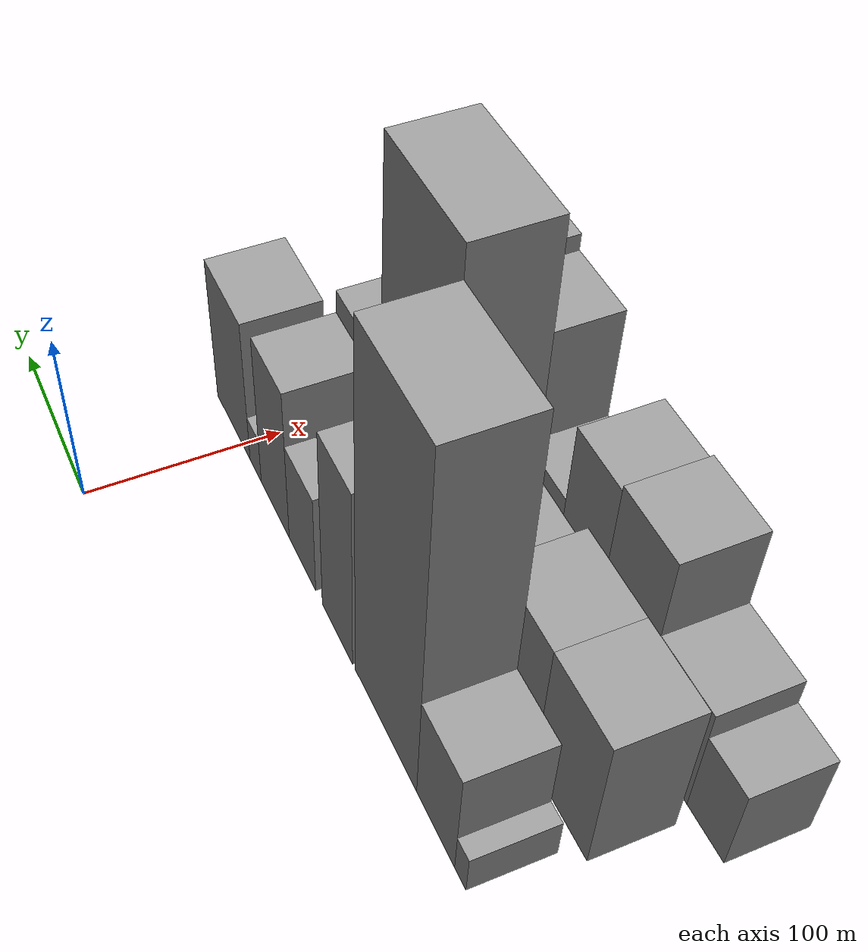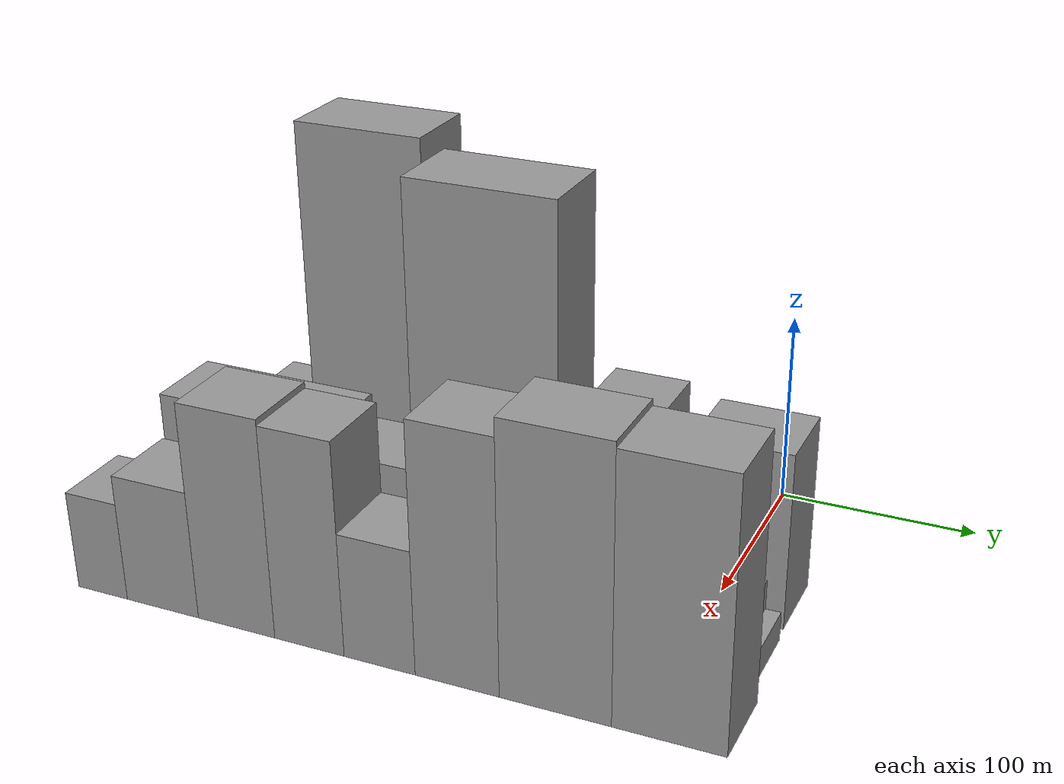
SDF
<sdf version="1.6">
 <world name="default">
  <model name="building_8">
   <static>1</static>
   <pose>100.0000 -247.0979 0 0.000000 0.000000 0.000000</pose>
   <link name="link">
    <pose>0 0 12.00 0 0 0</pose>
    <collision name="collision"><geometry><box><size>40.0000 10.2732 24.0000</size></box></geometry></collision>
    <visual name="visual">
     <cast_shadows>0</cast_shadows>
     <geometry><box><size>40.0000 10.2732 24.0000</size></box></geometry>
     <material>
      <script>
       <uri>model://grey_wall/materials/scripts</uri>
       <uri>model://grey_wall/materials/textures</uri>
       <name>vrc/grey_wall</name>
      </script>
     </material>
    </visual>
   </link>
  </model>
  <model name="building_9">
   <static>1</static>
   <pose>100.0000 -224.0156 0 0.000000 0.000000 0.000000</pose>
   <link name="link">
    <pose>0 0 33.00 0 0 0</pose>
    <collision name="collision"><geometry><box><size>40.0000 35.8916 66.0000</size></box></geometry></collision>
    <visual name="visual">
     <cast_shadows>0</cast_shadows>
     <geometry><box><size>40.0000 35.8916 66.0000</size></box></geometry>
     <material>
      <script>
       <uri>model://grey_wall/materials/scripts</uri>
       <uri>model://grey_wall/materials/textures</uri>
       <name>vrc/grey_wall</name>
      </script>
     </material>
    </visual>
   </link>
  </model>
  <model name="building_10">
   <static>1</static>
   <pose>100.0000 -174.0560 0 0.000000 0.000000 0.000000</pose>
   <link name="link">
    <pose>0 0 105.00 0 0 0</pose>
    <collision name="collision"><geometry><box><size>40.0000 64.0275 210.0000</size></box></geometry></collision>
    <visual name="visual">
     <cast_shadows>0</cast_shadows>
     <geometry><box><size>40.0000 64.0275 210.0000</size></box></geometry>
     <material>
      <script>
       <uri>model://grey_wall/materials/scripts</uri>
       <uri>model://grey_wall/materials/textures</uri>
       <name>vrc/grey_wall</name>
      </script>
     </material>
    </visual>
   </link>
  </model>
  <model name="building_11">
   <static>1</static>
   <pose>100.0000 -121.6259 0 0.000000 0.000000 0.000000</pose>
   <link name="link">
    <pose>0 0 57.00 0 0 0</pose>
    <collision name="collision"><geometry><box><size>40.0000 34.8327 114.0000</size></box></geometry></collision>
    <visual name="visual">
     <cast_shadows>0</cast_shadows>
     <geometry><box><size>40.0000 34.8327 114.0000</size></box></geometry>
     <material>
      <script>
       <uri>model://grey_wall/materials/scripts</uri>
       <uri>model://grey_wall/materials/textures</uri>
       <name>vrc/grey_wall</name>
      </script>
     </material>
    </visual>
   </link>
  </model>
  <model name="building_12">
   <static>1</static>
   <pose>100.0000 -79.8092 0 0.000000 0.000000 0.000000</pose>
   <link name="link">
    <pose>0 0 31.50 0 0 0</pose>
    <collision name="collision"><geometry><box><size>40.0000 32.8008 63.0000</size></box></geometry></collision>
    <visual name="visual">
     <cast_shadows>0</cast_shadows>
     <geometry><box><size>40.0000 32.8008 63.0000</size></box></geometry>
     <material>
      <script>
       <uri>model://grey_wall/materials/scripts</uri>
       <uri>model://grey_wall/materials/textures</uri>
       <name>vrc/grey_wall</name>
      </script>
     </material>
    </visual>
   </link>
  </model>
  <model name="building_13">
   <static>1</static>
   <pose>100.0000 -44.9601 0 0.000000 0.000000 0.000000</pose>
   <link name="link">
    <pose>0 0 48.00 0 0 0</pose>
    <collision name="collision"><geometry><box><size>40.0000 36.8974 96.0000</size></box></geometry></collision>
    <visual name="visual">
     <cast_shadows>0</cast_shadows>
     <geometry><box><size>40.0000 36.8974 96.0000</size></box></geometry>
     <material>
      <script>
       <uri>model://grey_wall/materials/scripts</uri>
       <uri>model://grey_wall/materials/textures</uri>
       <name>vrc/grey_wall</name>
      </script>
     </material>
    </visual>
   </link>
  </model>
  <model name="building_14">
   <static>1</static>
   <pose>100.0000 -18.8374 0 0.000000 0.000000 0.000000</pose>
   <link name="link">
    <pose>0 0 15.00 0 0 0</pose>
    <collision name="collision"><geometry><box><size>40.0000 15.3480 30.0000</size></box></geometry></collision>
    <visual name="visual">
     <cast_shadows>0</cast_shadows>
     <geometry><box><size>40.0000 15.3480 30.0000</size></box></geometry>
     <material>
      <script>
       <uri>model://grey_wall/materials/scripts</uri>
       <uri>model://grey_wall/materials/textures</uri>
       <name>vrc/grey_wall</name>
      </script>
     </material>
    </visual>
   </link>
  </model>
  <model name="building_15">
   <static>1</static>
   <pose>100.0000 12.3434 0 0.000000 0.000000 0.000000</pose>
   <link name="link">
    <pose>0 0 45.00 0 0 0</pose>
    <collision name="collision"><geometry><box><size>40.0000 47.0137 90.0000</size></box></geometry></collision>
    <visual name="visual">
     <cast_shadows>0</cast_shadows>
     <geometry><box><size>40.0000 47.0137 90.0000</size></box></geometry>
     <material>
      <script>
       <uri>model://grey_wall/materials/scripts</uri>
       <uri>model://grey_wall/materials/textures</uri>
       <name>vrc/grey_wall</name>
      </script>
     </material>
    </visual>
   </link>
  </model>
  <model name="building_42">
   <static>1</static>
   <pose>149.0000 -237.4442 0 0.000000 0.000000 0.000000</pose>
   <link name="link">
    <pose>0 0 42.00 0 0 0</pose>
    <collision name="collision"><geometry><box><size>40.0000 44.8894 84.0000</size></box></geometry></collision>
    <visual name="visual">
     <cast_shadows>0</cast_shadows>
     <geometry><box><size>40.0000 44.8894 84.0000</size></box></geometry>
     <material>
      <script>
       <uri>model://grey_wall/materials/scripts</uri>
       <uri>model://grey_wall/materials/textures</uri>
       <name>vrc/grey_wall</name>
      </script>
     </material>
    </visual>
   </link>
  </model>
  <model name="building_43">
   <static>1</static>
   <pose>149.0000 -191.5692 0 0.000000 0.000000 0.000000</pose>
   <link name="link">
    <pose>0 0 42.00 0 0 0</pose>
    <collision name="collision"><geometry><box><size>40.0000 46.8606 84.0000</size></box></geometry></collision>
    <visual name="visual">
     <cast_shadows>0</cast_shadows>
     <geometry><box><size>40.0000 46.8606 84.0000</size></box></geometry>
     <material>
      <script>
       <uri>model://grey_wall/materials/scripts</uri>
       <uri>model://grey_wall/materials/textures</uri>
       <name>vrc/grey_wall</name>
      </script>
     </material>
    </visual>
   </link>
  </model>
  <model name="building_44">
   <static>1</static>
   <pose>149.0000 -146.8009 0 0.000000 0.000000 0.000000</pose>
   <link name="link">
    <pose>0 0 36.00 0 0 0</pose>
    <collision name="collision"><geometry><box><size>40.0000 42.6759 72.0000</size></box></geometry></collision>
    <visual name="visual">
     <cast_shadows>0</cast_shadows>
     <geometry><box><size>40.0000 42.6759 72.0000</size></box></geometry>
     <material>
      <script>
       <uri>model://grey_wall/materials/scripts</uri>
       <uri>model://grey_wall/materials/textures</uri>
       <name>vrc/grey_wall</name>
      </script>
     </material>
    </visual>
   </link>
  </model>
  <model name="building_45">
   <static>1</static>
   <pose>149.0000 -90.2303 0 0.000000 0.000000 0.000000</pose>
   <link name="link">
    <pose>0 0 105.00 0 0 0</pose>
    <collision name="collision"><geometry><box><size>40.0000 70.4652 210.0000</size></box></geometry></collision>
    <visual name="visual">
     <cast_shadows>0</cast_shadows>
     <geometry><box><size>40.0000 70.4652 210.0000</size></box></geometry>
     <material>
      <script>
       <uri>model://grey_wall/materials/scripts</uri>
       <uri>model://grey_wall/materials/textures</uri>
       <name>vrc/grey_wall</name>
      </script>
     </material>
    </visual>
   </link>
  </model>
  <model name="building_46">
   <static>1</static>
   <pose>149.0000 -28.0417 0 0.000000 0.000000 0.000000</pose>
   <link name="link">
    <pose>0 0 43.50 0 0 0</pose>
    <collision name="collision"><geometry><box><size>40.0000 47.9121 87.0000</size></box></geometry></collision>
    <visual name="visual">
     <cast_shadows>0</cast_shadows>
     <geometry><box><size>40.0000 47.9121 87.0000</size></box></geometry>
     <material>
      <script>
       <uri>model://grey_wall/materials/scripts</uri>
       <uri>model://grey_wall/materials/textures</uri>
       <name>vrc/grey_wall</name>
      </script>
     </material>
    </visual>
   </link>
  </model>
  <model name="building_47">
   <static>1</static>
   <pose>149.0000 -0.2553 0 0.000000 0.000000 0.000000</pose>
   <link name="link">
    <pose>0 0 9.00 0 0 0</pose>
    <collision name="collision"><geometry><box><size>40.0000 7.6607 18.0000</size></box></geometry></collision>
    <visual name="visual">
     <cast_shadows>0</cast_shadows>
     <geometry><box><size>40.0000 7.6607 18.0000</size></box></geometry>
     <material>
      <script>
       <uri>model://grey_wall/materials/scripts</uri>
       <uri>model://grey_wall/materials/textures</uri>
       <name>vrc/grey_wall</name>
      </script>
     </material>
    </visual>
   </link>
  </model>
  <model name="building_48">
   <static>1</static>
   <pose>149.0000 21.4753 0 0.000000 0.000000 0.000000</pose>
   <link name="link">
    <pose>0 0 15.00 0 0 0</pose>
    <collision name="collision"><geometry><box><size>40.0000 15.8003 30.0000</size></box></geometry></collision>
    <visual name="visual">
     <cast_shadows>0</cast_shadows>
     <geometry><box><size>40.0000 15.8003 30.0000</size></box></geometry>
     <material>
      <script>
       <uri>model://grey_wall/materials/scripts</uri>
       <uri>model://grey_wall/materials/textures</uri>
       <name>vrc/grey_wall</name>
      </script>
     </material>
    </visual>
   </link>
  </model>
  <model name="building_49">
   <static>1</static>
   <pose>149.0000 33.0678 0 0.000000 0.000000 0.000000</pose>
   <link name="link">
    <pose>0 0 7.50 0 0 0</pose>
    <collision name="collision"><geometry><box><size>40.0000 7.3847 15.0000</size></box></geometry></collision>
    <visual name="visual">
     <cast_shadows>0</cast_shadows>
     <geometry><box><size>40.0000 7.3847 15.0000</size></box></geometry>
     <material>
      <script>
       <uri>model://grey_wall/materials/scripts</uri>
       <uri>model://grey_wall/materials/textures</uri>
       <name>vrc/grey_wall</name>
      </script>
     </material>
    </visual>
   </link>
  </model>
  <model name="building_70">
   <static>1</static>
   <pose>198.0000 -267.7287 0 0.000000 0.000000 0.000000</pose>
   <link name="link">
    <pose>0 0 25.50 0 0 0</pose>
    <collision name="collision"><geometry><box><size>40.0000 27.7717 51.0000</size></box></geometry></collision>
    <visual name="visual">
     <cast_shadows>0</cast_shadows>
     <geometry><box><size>40.0000 27.7717 51.0000</size></box></geometry>
     <material>
      <script>
       <uri>model://grey_wall/materials/scripts</uri>
       <uri>model://grey_wall/materials/textures</uri>
       <name>vrc/grey_wall</name>
      </script>
     </material>
    </visual>
   </link>
  </model>
  <model name="building_71">
   <static>1</static>
   <pose>198.0000 -234.0629 0 0.000000 0.000000 0.000000</pose>
   <link name="link">
    <pose>0 0 33.00 0 0 0</pose>
    <collision name="collision"><geometry><box><size>40.0000 39.5599 66.0000</size></box></geometry></collision>
    <visual name="visual">
     <cast_shadows>0</cast_shadows>
     <geometry><box><size>40.0000 39.5599 66.0000</size></box></geometry>
     <material>
      <script>
       <uri>model://grey_wall/materials/scripts</uri>
       <uri>model://grey_wall/materials/textures</uri>
       <name>vrc/grey_wall</name>
      </script>
     </material>
    </visual>
   </link>
  </model>
  <model name="building_72">
   <static>1</static>
   <pose>198.0000 -193.7719 0 0.000000 0.000000 0.000000</pose>
   <link name="link">
    <pose>0 0 55.50 0 0 0</pose>
    <collision name="collision"><geometry><box><size>40.0000 41.0221 111.0000</size></box></geometry></collision>
    <visual name="visual">
     <cast_shadows>0</cast_shadows>
     <geometry><box><size>40.0000 41.0221 111.0000</size></box></geometry>
     <material>
      <script>
       <uri>model://grey_wall/materials/scripts</uri>
       <uri>model://grey_wall/materials/textures</uri>
       <name>vrc/grey_wall</name>
      </script>
     </material>
    </visual>
   </link>
  </model>
  <model name="building_73">
   <static>1</static>
   <pose>198.0000 -155.2970 0 0.000000 0.000000 0.000000</pose>
   <link name="link">
    <pose>0 0 54.00 0 0 0</pose>
    <collision name="collision"><geometry><box><size>40.0000 35.9277 108.0000</size></box></geometry></collision>
    <visual name="visual">
     <cast_shadows>0</cast_shadows>
     <geometry><box><size>40.0000 35.9277 108.0000</size></box></geometry>
     <material>
      <script>
       <uri>model://grey_wall/materials/scripts</uri>
       <uri>model://grey_wall/materials/textures</uri>
       <name>vrc/grey_wall</name>
      </script>
     </material>
    </visual>
   </link>
  </model>
  <model name="building_74">
   <static>1</static>
   <pose>198.0000 -119.5386 0 0.000000 0.000000 0.000000</pose>
   <link name="link">
    <pose>0 0 31.50 0 0 0</pose>
    <collision name="collision"><geometry><box><size>40.0000 35.5890 63.0000</size></box></geometry></collision>
    <visual name="visual">
     <cast_shadows>0</cast_shadows>
     <geometry><box><size>40.0000 35.5890 63.0000</size></box></geometry>
     <material>
      <script>
       <uri>model://grey_wall/materials/scripts</uri>
       <uri>model://grey_wall/materials/textures</uri>
       <name>vrc/grey_wall</name>
      </script>
     </material>
    </visual>
   </link>
  </model>
  <model name="building_75">
   <static>1</static>
   <pose>198.0000 -81.4642 0 0.000000 0.000000 0.000000</pose>
   <link name="link">
    <pose>0 0 63.00 0 0 0</pose>
    <collision name="collision"><geometry><box><size>40.0000 40.5598 126.0000</size></box></geometry></collision>
    <visual name="visual">
     <cast_shadows>0</cast_shadows>
     <geometry><box><size>40.0000 40.5598 126.0000</size></box></geometry>
     <material>
      <script>
       <uri>model://grey_wall/materials/scripts</uri>
       <uri>model://grey_wall/materials/textures</uri>
       <name>vrc/grey_wall</name>
      </script>
     </material>
    </visual>
   </link>
  </model>
  <model name="building_76">
   <static>1</static>
   <pose>198.0000 -35.2606 0 0.000000 0.000000 0.000000</pose>
   <link name="link">
    <pose>0 0 67.50 0 0 0</pose>
    <collision name="collision"><geometry><box><size>40.0000 51.8475 135.0000</size></box></geometry></collision>
    <visual name="visual">
     <cast_shadows>0</cast_shadows>
     <geometry><box><size>40.0000 51.8475 135.0000</size></box></geometry>
     <material>
      <script>
       <uri>model://grey_wall/materials/scripts</uri>
       <uri>model://grey_wall/materials/textures</uri>
       <name>vrc/grey_wall</name>
      </script>
     </material>
    </visual>
   </link>
  </model>
  <model name="building_77">
   <static>1</static>
   <pose>198.0000 16.1675 0 0.000000 0.000000 0.000000</pose>
   <link name="link">
    <pose>0 0 66.00 0 0 0</pose>
    <collision name="collision"><geometry><box><size>40.0000 51.0086 132.0000</size></box></geometry></collision>
    <visual name="visual">
     <cast_shadows>0</cast_shadows>
     <geometry><box><size>40.0000 51.0086 132.0000</size></box></geometry>
     <material>
      <script>
       <uri>model://grey_wall/materials/scripts</uri>
       <uri>model://grey_wall/materials/textures</uri>
       <name>vrc/grey_wall</name>
      </script>
     </material>
    </visual>
   </link>
  </model>
 </world>
</sdf>
